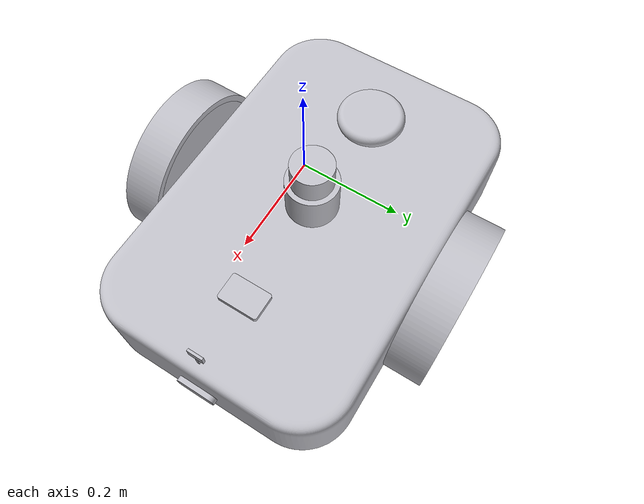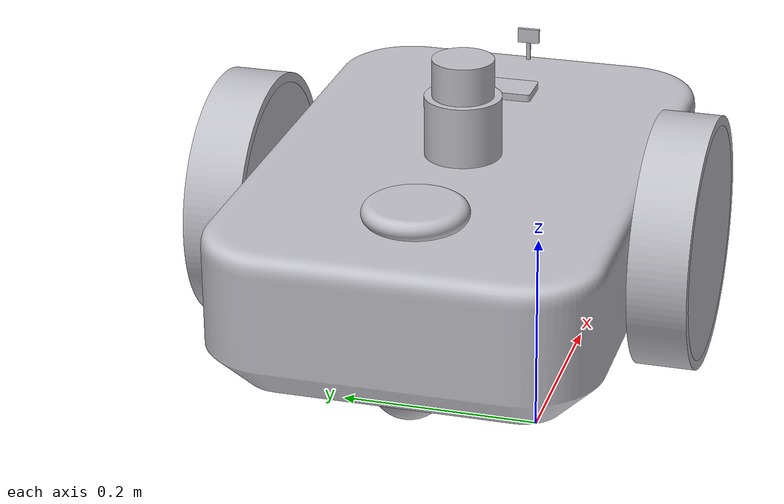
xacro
<?xml version="1.0" ?>
<robot name="mack" xmlns:xacro="http://www.ros.org/wiki/xacro">

<xacro:include filename="$(find mack_description)/urdf/materials.xacro" />
<xacro:include filename="$(find mack_description)/urdf/mack.trans" />
<xacro:include filename="$(find mack_description)/urdf/mack.gazebo" />
<xacro:include filename="$(find mack_description)/urdf/diff_drive.gazebo" />

<link name="base_link">
  <inertial>
    <origin xyz="0.16499999922215533 0.12000000000013682 0.13289602911287893" rpy="0 0 0"/>
    <mass value="38.16759962080249"/>
    <inertia ixx="0.548564" iyy="1.148902" izz="1.542967" ixy="-0.0" iyz="-0.0" ixz="0.0"/>
  </inertial>
  <visual>
    <origin xyz="0 0 0" rpy="0 0 0"/>
    <geometry>
      <mesh filename="file://$(find mack_description)/meshes/base_link.stl" scale="0.001 0.001 0.001"/>
    </geometry>
    <material name="silver"/>
  </visual>
  <collision>
    <origin xyz="0 0 0" rpy="0 0 0"/>
    <geometry>
      <mesh filename="file://$(find mack_description)/meshes/base_link.stl" scale="0.001 0.001 0.001"/>
    </geometry>
  </collision>
</link>

<link name="left_wheel_1">
  <inertial>
    <origin xyz="0.0 -0.02999999999999993 0.0" rpy="0 0 0"/>
    <mass value="2.8771962158636755"/>
    <inertia ixx="0.011221" iyy="0.020716" izz="0.011221" ixy="-0.0" iyz="-0.0" ixz="0.0"/>
  </inertial>
  <visual>
    <origin xyz="-0.165 0.08 -0.14046" rpy="0 0 0"/>
    <geometry>
      <mesh filename="file://$(find mack_description)/meshes/left_wheel_1.stl" scale="0.001 0.001 0.001"/>
    </geometry>
    <material name="silver"/>
  </visual>
  <collision>
    <origin xyz="-0.165 0.08 -0.14046" rpy="0 0 0"/>
    <geometry>
      <mesh filename="file://$(find mack_description)/meshes/left_wheel_1.stl" scale="0.001 0.001 0.001"/>
    </geometry>
  </collision>
</link>

<link name="right_wheel_1">
  <inertial>
    <origin xyz="-1.1102230246251565e-16 0.030000000000000193 5.551115123125783e-17" rpy="0 0 0"/>
    <mass value="2.8771962158636755"/>
    <inertia ixx="0.011221" iyy="0.020716" izz="0.011221" ixy="0.0" iyz="-0.0" ixz="0.0"/>
  </inertial>
  <visual>
    <origin xyz="-0.165 -0.32 -0.14046" rpy="0 0 0"/>
    <geometry>
      <mesh filename="file://$(find mack_description)/meshes/right_wheel_1.stl" scale="0.001 0.001 0.001"/>
    </geometry>
    <material name="silver"/>
  </visual>
  <collision>
    <origin xyz="-0.165 -0.32 -0.14046" rpy="0 0 0"/>
    <geometry>
      <mesh filename="file://$(find mack_description)/meshes/right_wheel_1.stl" scale="0.001 0.001 0.001"/>
    </geometry>
  </collision>
</link>

<link name="left_tyre_grip_1">
  <inertial>
    <origin xyz="-2.498001805406602e-16 0.03000000000000025 2.220446049250313e-16" rpy="0 0 0"/>
    <mass value="0.4382521751757751"/>
    <inertia ixx="0.003561" iyy="0.006859" izz="0.003561" ixy="-0.0" iyz="-0.0" ixz="-0.0"/>
  </inertial>
  <visual>
    <origin xyz="-0.165 0.14 -0.14046" rpy="0 0 0"/>
    <geometry>
      <mesh filename="file://$(find mack_description)/meshes/left_tyre_grip_1.stl" scale="0.001 0.001 0.001"/>
    </geometry>
    <material name="silver"/>
  </visual>
  <collision>
    <origin xyz="-0.165 0.14 -0.14046" rpy="0 0 0"/>
    <geometry>
      <mesh filename="file://$(find mack_description)/meshes/left_tyre_grip_1.stl" scale="0.001 0.001 0.001"/>
    </geometry>
  </collision>
</link>

<link name="right_tyre_grip_1">
  <inertial>
    <origin xyz="-2.220446049250313e-16 -0.029999999999999805 -2.7755575615628914e-17" rpy="0 0 0"/>
    <mass value="0.4382521751757761"/>
    <inertia ixx="0.003561" iyy="0.006859" izz="0.003561" ixy="0.0" iyz="0.0" ixz="0.0"/>
  </inertial>
  <visual>
    <origin xyz="-0.165 -0.38 -0.14046" rpy="0 0 0"/>
    <geometry>
      <mesh filename="file://$(find mack_description)/meshes/right_tyre_grip_1.stl" scale="0.001 0.001 0.001"/>
    </geometry>
    <material name="silver"/>
  </visual>
  <collision>
    <origin xyz="-0.165 -0.38 -0.14046" rpy="0 0 0"/>
    <geometry>
      <mesh filename="file://$(find mack_description)/meshes/right_tyre_grip_1.stl" scale="0.001 0.001 0.001"/>
    </geometry>
  </collision>
</link>

<link name="front_caster_1">
  <inertial>
    <origin xyz="0.19999999999999998 -8.326672684688674e-17 -0.014799550239393673" rpy="0 0 0"/>
    <mass value="1.1778428198848274"/>
    <inertia ixx="0.000485" iyy="0.000485" izz="0.000751" ixy="-0.0" iyz="0.0" ixz="-0.0"/>
  </inertial>
  <visual>
    <origin xyz="-0.165 -0.12 -0.05046" rpy="0 0 0"/>
    <geometry>
      <mesh filename="file://$(find mack_description)/meshes/front_caster_1.stl" scale="0.001 0.001 0.001"/>
    </geometry>
    <material name="silver"/>
  </visual>
  <collision>
    <origin xyz="-0.165 -0.12 -0.05046" rpy="0 0 0"/>
    <geometry>
      <mesh filename="file://$(find mack_description)/meshes/front_caster_1.stl" scale="0.001 0.001 0.001"/>
    </geometry>
  </collision>
</link>

<link name="back_caster_1">
  <inertial>
    <origin xyz="-0.20000000000000015 -2.7755575615628914e-17 -0.01479955023939366" rpy="0 0 0"/>
    <mass value="1.1778428198848274"/>
    <inertia ixx="0.000485" iyy="0.000485" izz="0.000751" ixy="-0.0" iyz="0.0" ixz="0.0"/>
  </inertial>
  <visual>
    <origin xyz="-0.165 -0.12 -0.05046" rpy="0 0 0"/>
    <geometry>
      <mesh filename="file://$(find mack_description)/meshes/back_caster_1.stl" scale="0.001 0.001 0.001"/>
    </geometry>
    <material name="silver"/>
  </visual>
  <collision>
    <origin xyz="-0.165 -0.12 -0.05046" rpy="0 0 0"/>
    <geometry>
      <mesh filename="file://$(find mack_description)/meshes/back_caster_1.stl" scale="0.001 0.001 0.001"/>
    </geometry>
  </collision>
</link>

<link name="dept_camera_1">
  <inertial>
    <origin xyz="0.003999999999999837 5.551115123125783e-17 5.551115123125783e-17" rpy="0 0 0"/>
    <mass value="0.010754465589573915"/>
    <inertia ixx="4e-06" iyy="0.0" izz="3e-06" ixy="-0.0" iyz="0.0" ixz="-0.0"/>
  </inertial>
  <visual>
    <origin xyz="-0.465 -0.12 -0.14046" rpy="0 0 0"/>
    <geometry>
      <mesh filename="file://$(find mack_description)/meshes/dept_camera_1.stl" scale="0.001 0.001 0.001"/>
    </geometry>
    <material name="silver"/>
  </visual>
  <collision>
    <origin xyz="-0.465 -0.12 -0.14046" rpy="0 0 0"/>
    <geometry>
      <mesh filename="file://$(find mack_description)/meshes/dept_camera_1.stl" scale="0.001 0.001 0.001"/>
    </geometry>
  </collision>
</link>

<link name="imu_link_1">
  <inertial>
    <origin xyz="0.1749999999999993 -3.885780586188048e-16 0.003999999999999754" rpy="0 0 0"/>
    <mass value="0.022929718095535036"/>
    <inertia ixx="8e-06" iyy="3e-06" izz="1.1e-05" ixy="-0.0" iyz="0.0" ixz="-0.0"/>
  </inertial>
  <visual>
    <origin xyz="-0.165 -0.12 -0.21046" rpy="0 0 0"/>
    <geometry>
      <mesh filename="file://$(find mack_description)/meshes/imu_link_1.stl" scale="0.001 0.001 0.001"/>
    </geometry>
    <material name="silver"/>
  </visual>
  <collision>
    <origin xyz="-0.165 -0.12 -0.21046" rpy="0 0 0"/>
    <geometry>
      <mesh filename="file://$(find mack_description)/meshes/imu_link_1.stl" scale="0.001 0.001 0.001"/>
    </geometry>
  </collision>
</link>

<link name="lidar_base_1">
  <inertial>
    <origin xyz="-8.326672684688674e-17 -2.7755575615628914e-17 0.032" rpy="0 0 0"/>
    <mass value="0.3410010329912504"/>
    <inertia ixx="0.000253" iyy="0.000253" izz="0.000273" ixy="0.0" iyz="0.0" ixz="-0.0"/>
  </inertial>
  <visual>
    <origin xyz="-0.165 -0.12 -0.21046" rpy="0 0 0"/>
    <geometry>
      <mesh filename="file://$(find mack_description)/meshes/lidar_base_1.stl" scale="0.001 0.001 0.001"/>
    </geometry>
    <material name="silver"/>
  </visual>
  <collision>
    <origin xyz="-0.165 -0.12 -0.21046" rpy="0 0 0"/>
    <geometry>
      <mesh filename="file://$(find mack_description)/meshes/lidar_base_1.stl" scale="0.001 0.001 0.001"/>
    </geometry>
  </collision>
</link>

<link name="lidar_link_1">
  <inertial>
    <origin xyz="-8.326672684688674e-17 -5.551115123125783e-17 0.020000000000000018" rpy="0 0 0"/>
    <mass value="0.13646983083106357"/>
    <inertia ixx="5.3e-05" iyy="5.3e-05" izz="7e-05" ixy="0.0" iyz="-0.0" ixz="-0.0"/>
  </inertial>
  <visual>
    <origin xyz="-0.165 -0.12 -0.27446" rpy="0 0 0"/>
    <geometry>
      <mesh filename="file://$(find mack_description)/meshes/lidar_link_1.stl" scale="0.001 0.001 0.001"/>
    </geometry>
    <material name="silver"/>
  </visual>
  <collision>
    <origin xyz="-0.165 -0.12 -0.27446" rpy="0 0 0"/>
    <geometry>
      <mesh filename="file://$(find mack_description)/meshes/lidar_link_1.stl" scale="0.001 0.001 0.001"/>
    </geometry>
  </collision>
</link>

<link name="gps_link_1">
  <inertial>
    <origin xyz="-0.17499999999999916 -6.938893903907228e-17 0.010000000000000064" rpy="0 0 0"/>
    <mass value="0.17487250078400407"/>
    <inertia ixx="0.000121" iyy="0.000121" izz="0.000231" ixy="0.0" iyz="0.0" ixz="0.0"/>
  </inertial>
  <visual>
    <origin xyz="-0.165 -0.12 -0.21046" rpy="0 0 0"/>
    <geometry>
      <mesh filename="file://$(find mack_description)/meshes/gps_link_1.stl" scale="0.001 0.001 0.001"/>
    </geometry>
    <material name="silver"/>
  </visual>
  <collision>
    <origin xyz="-0.165 -0.12 -0.21046" rpy="0 0 0"/>
    <geometry>
      <mesh filename="file://$(find mack_description)/meshes/gps_link_1.stl" scale="0.001 0.001 0.001"/>
    </geometry>
  </collision>
</link>

<link name="camera_base_1">
  <inertial>
    <origin xyz="4.440892098500626e-16 -9.71445146547012e-17 0.010000000000000009" rpy="0 0 0"/>
    <mass value="0.0025119999999999596"/>
    <inertia ixx="0.0" iyy="0.0" izz="0.0" ixy="-0.0" iyz="0.0" ixz="-0.0"/>
  </inertial>
  <visual>
    <origin xyz="-0.445 -0.12 -0.21046" rpy="0 0 0"/>
    <geometry>
      <mesh filename="file://$(find mack_description)/meshes/camera_base_1.stl" scale="0.001 0.001 0.001"/>
    </geometry>
    <material name="silver"/>
  </visual>
  <collision>
    <origin xyz="-0.445 -0.12 -0.21046" rpy="0 0 0"/>
    <geometry>
      <mesh filename="file://$(find mack_description)/meshes/camera_base_1.stl" scale="0.001 0.001 0.001"/>
    </geometry>
  </collision>
</link>

<link name="camera_link_1">
  <inertial>
    <origin xyz="3.3306690738754696e-16 -8.326672684688674e-17 0.008000000000000174" rpy="0 0 0"/>
    <mass value="0.0016281600485229474"/>
    <inertia ixx="0.0" iyy="0.0" izz="0.0" ixy="0.0" iyz="0.0" ixz="0.0"/>
  </inertial>
  <visual>
    <origin xyz="-0.445 -0.12 -0.23046" rpy="0 0 0"/>
    <geometry>
      <mesh filename="file://$(find mack_description)/meshes/camera_link_1.stl" scale="0.001 0.001 0.001"/>
    </geometry>
    <material name="silver"/>
  </visual>
  <collision>
    <origin xyz="-0.445 -0.12 -0.23046" rpy="0 0 0"/>
    <geometry>
      <mesh filename="file://$(find mack_description)/meshes/camera_link_1.stl" scale="0.001 0.001 0.001"/>
    </geometry>
  </collision>
</link>

<joint name="Revolute 14" type="continuous">
  <origin xyz="0.165 -0.08 0.14046" rpy="0 0 0"/>
  <parent link="base_link"/>
  <child link="left_wheel_1"/>
  <axis xyz="0.0 -1.0 0.0"/>
</joint>

<joint name="Revolute 15" type="continuous">
  <origin xyz="0.165 0.32 0.14046" rpy="0 0 0"/>
  <parent link="base_link"/>
  <child link="right_wheel_1"/>
  <axis xyz="0.0 -1.0 0.0"/>
</joint>

<joint name="Rigid 16" type="fixed">
  <origin xyz="0.0 -0.06 0.0" rpy="0 0 0"/>
  <parent link="left_wheel_1"/>
  <child link="left_tyre_grip_1"/>
</joint>

<joint name="Rigid 17" type="fixed">
  <origin xyz="0.0 0.06 0.0" rpy="0 0 0"/>
  <parent link="right_wheel_1"/>
  <child link="right_tyre_grip_1"/>
</joint>

<joint name="Rigid 18" type="fixed">
  <origin xyz="0.165 0.12 0.05046" rpy="0 0 0"/>
  <parent link="base_link"/>
  <child link="front_caster_1"/>
</joint>

<joint name="Rigid 19" type="fixed">
  <origin xyz="0.165 0.12 0.05046" rpy="0 0 0"/>
  <parent link="base_link"/>
  <child link="back_caster_1"/>
</joint>

<joint name="Rigid 20" type="fixed">
  <origin xyz="0.465 0.12 0.14046" rpy="0 0 0"/>
  <parent link="base_link"/>
  <child link="dept_camera_1"/>
</joint>

<joint name="Rigid 21" type="fixed">
  <origin xyz="0.165 0.12 0.21046" rpy="0 0 0"/>
  <parent link="base_link"/>
  <child link="imu_link_1"/>
</joint>

<joint name="Rigid 23" type="fixed">
  <origin xyz="0.165 0.12 0.21046" rpy="0 0 0"/>
  <parent link="base_link"/>
  <child link="lidar_base_1"/>
</joint>

<joint name="Rigid 24" type="fixed">
  <origin xyz="0.0 0.0 0.064" rpy="0 0 0"/>
  <parent link="lidar_base_1"/>
  <child link="lidar_link_1"/>
</joint>

<joint name="Rigid 25" type="fixed">
  <origin xyz="0.0 0.0 0.0" rpy="0 0 0"/>
  <parent link="lidar_base_1"/>
  <child link="gps_link_1"/>
</joint>

<joint name="Rigid 26" type="fixed">
  <origin xyz="0.445 0.12 0.21046" rpy="0 0 0"/>
  <parent link="base_link"/>
  <child link="camera_base_1"/>
</joint>

<joint name="Rigid 27" type="fixed">
  <origin xyz="0.0 0.0 0.02" rpy="0 0 0"/>
  <parent link="camera_base_1"/>
  <child link="camera_link_1"/>
</joint>

</robot>

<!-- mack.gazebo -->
<robot name="mack" xmlns:xacro="http://www.ros.org/wiki/xacro" >

<xacro:property name="body_color" value="Gazebo/Grass" />
<xacro:property name="lidar_base_color" value="Gazebo/DarkGrey" />
<xacro:property name="lidar_color" value="Gazebo/Grey" />
<xacro:property name="gps_color" value="Gazebo/Grey" />
<xacro:property name="camera_color" value="Gazebo/Silver" />
<xacro:property name="imu_color" value="Gazebo/Blue" />
<xacro:property name="dept_cam_color" value="Gazebo/Blue" />
<xacro:property name="wheel_color" value="Gazebo/Black" />

<gazebo>
  <plugin name="control" filename="libgazebo_ros_control.so"/>
</gazebo>

<gazebo reference="base_link">
  <material>${body_color}</material>
  <mu1>0.2</mu1>
  <mu2>0.2</mu2>
  <self_collide>true</self_collide>
  <gravity>true</gravity>
</gazebo>

<gazebo reference="left_wheel_1">
  <material>${wheel_color}</material>
  <mu1>0.2</mu1>
  <mu2>0.2</mu2>
  <self_collide>true</self_collide>
</gazebo>

<gazebo reference="right_wheel_1">
  <material>${wheel_color}</material>
  <mu1>0.2</mu1>
  <mu2>0.2</mu2>
  <self_collide>true</self_collide>
</gazebo>

<gazebo reference="left_tyre_grip_1">
  <material>${body_color}</material>
  <mu1>0.2</mu1>
  <mu2>0.2</mu2>
  <self_collide>true</self_collide>
</gazebo>

<gazebo reference="right_tyre_grip_1">
  <material>${body_color}</material>
  <mu1>0.2</mu1>
  <mu2>0.2</mu2>
  <self_collide>true</self_collide>
</gazebo>

<gazebo reference="front_caster_1">
  <material>${wheel_color}</material>
  <mu1>0.2</mu1>
  <mu2>0.2</mu2>
  <self_collide>true</self_collide>
</gazebo>

<gazebo reference="back_caster_1">
  <material>${wheel_color}</material>
  <mu1>0.2</mu1>
  <mu2>0.2</mu2>
  <self_collide>true</self_collide>
</gazebo>

<gazebo reference="dept_camera_1">
  <material>${dept_cam_color}</material>
  <mu1>0.2</mu1>
  <mu2>0.2</mu2>
  <self_collide>true</self_collide>
</gazebo>

<gazebo reference="imu_link_1">
  <material>${imu_color}</material>
  <mu1>0.2</mu1>
  <mu2>0.2</mu2>
  <self_collide>true</self_collide>
</gazebo>

<gazebo reference="lidar_base_1">
  <material>${lidar_base_color}</material>
  <mu1>0.2</mu1>
  <mu2>0.2</mu2>
  <self_collide>true</self_collide>
</gazebo>

<gazebo reference="lidar_link_1">
  <material>${lidar_color}</material>
  <mu1>0.2</mu1>
  <mu2>0.2</mu2>
  <self_collide>true</self_collide>
</gazebo>

<gazebo reference="gps_link_1">
  <material>${gps_color}</material>
  <mu1>0.2</mu1>
  <mu2>0.2</mu2>
  <self_collide>true</self_collide>
</gazebo>

<gazebo reference="camera_base_1">
  <material>${camera_color}</material>
  <mu1>0.2</mu1>
  <mu2>0.2</mu2>
  <self_collide>true</self_collide>
</gazebo>

<gazebo reference="camera_link_1">
  <material>${camera_color}</material>
  <mu1>0.2</mu1>
  <mu2>0.2</mu2>
  <self_collide>true</self_collide>
</gazebo>

</robot>
